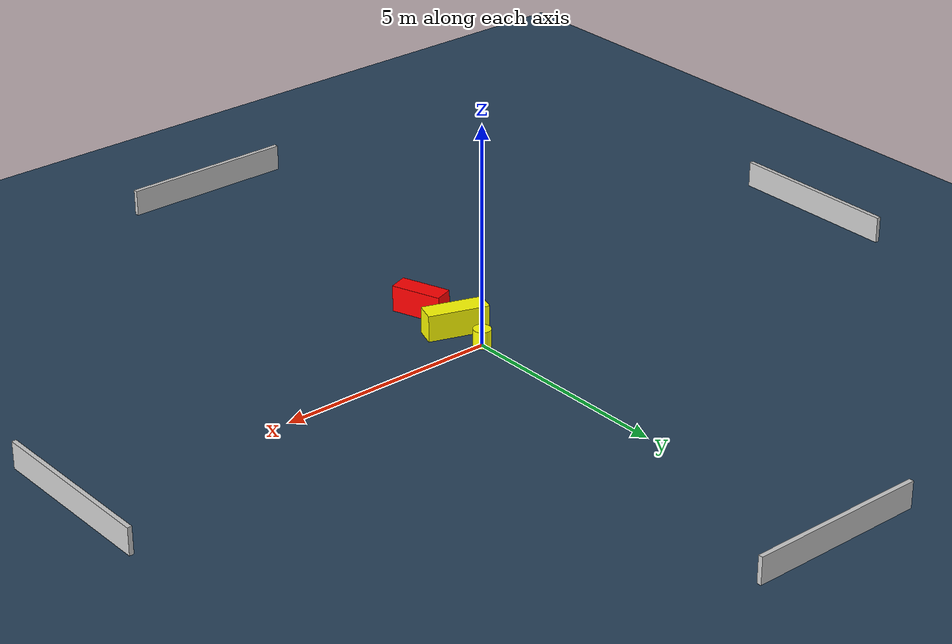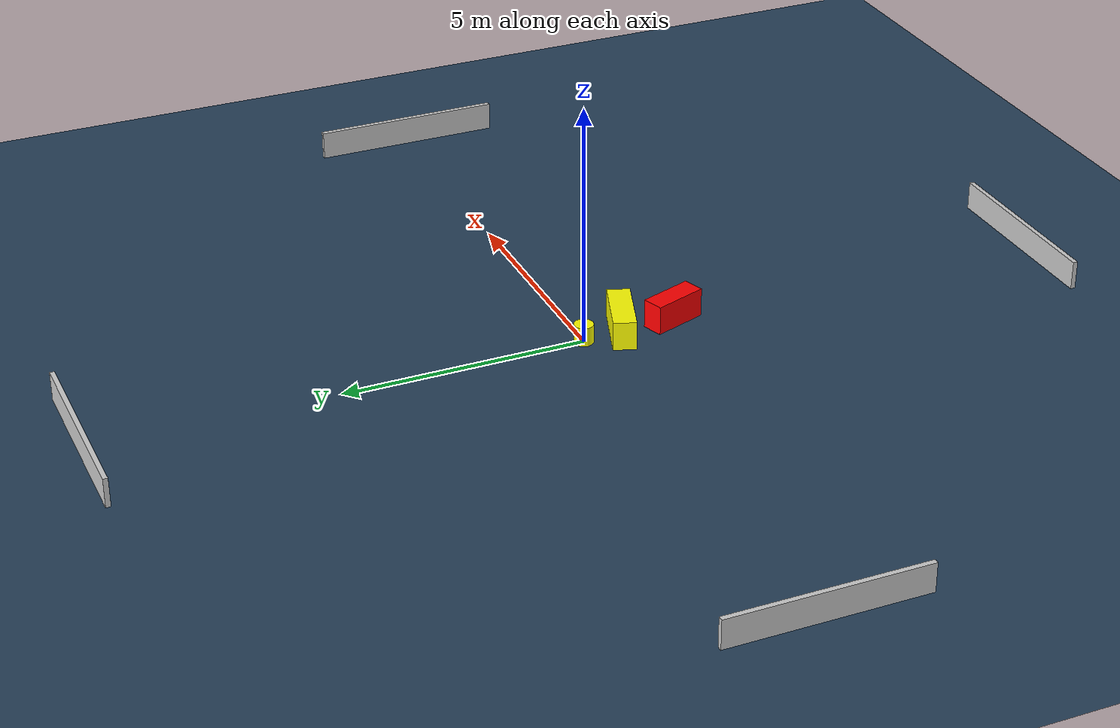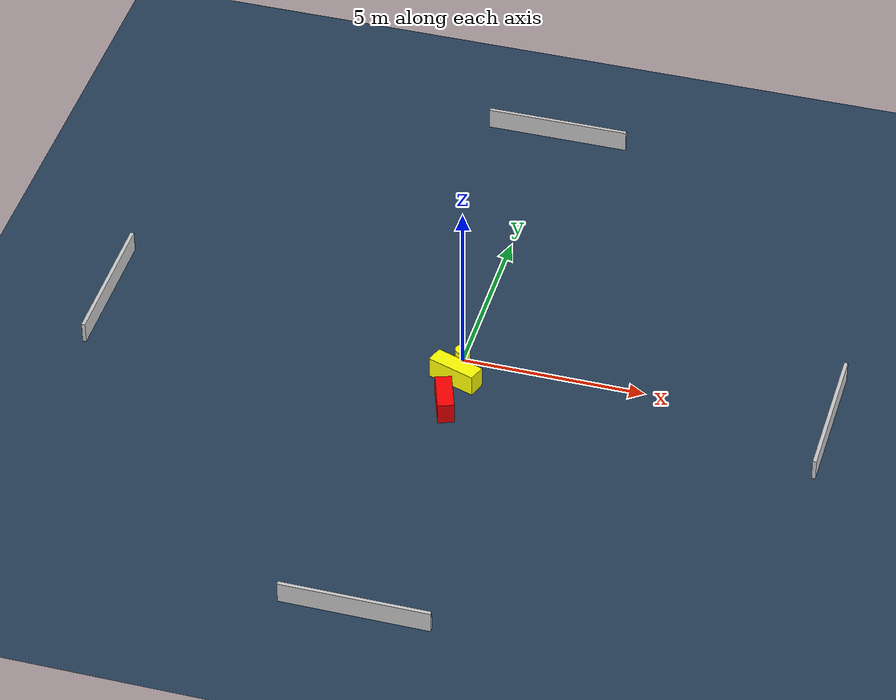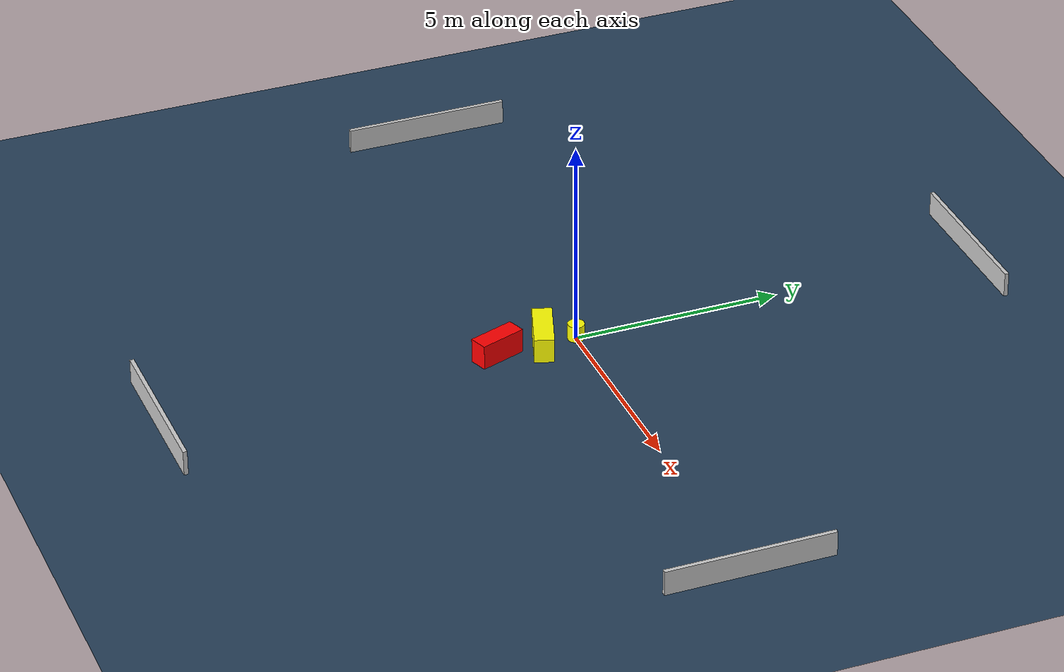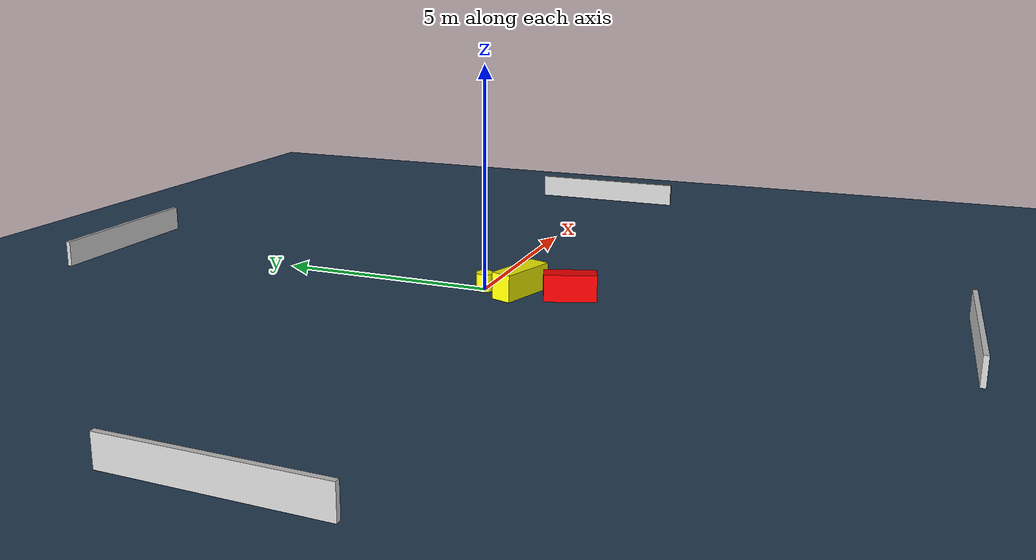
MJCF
<?xml version="1.0" ?>
<mujoco model="generated_environment">
  <option timestep="0.01" integrator="RK4" cone="elliptic"/>
  <default>
    <geom density="1"/>
  </default>
  <asset>
    <texture builtin="gradient" height="3072" name="skybox" rgb1="0.3 0.5 0.7" rgb2="0 0 0" type="skybox" width="512"/>
    <texture builtin="checker" height="300" name="groundplane" rgb1="0.2 0.3 0.4" rgb2="0.1 0.2 0.3" type="2d" width="300"/>
    <material name="groundplane" reflectance="0.2" texrepeat="5 5" texture="groundplane"/>
  </asset>
  <worldbody>
    <light dir="0 0 -1" directional="true" pos="0 0 1.5"/>
    <geom condim="3" friction="0.5 0.005 0.001" material="groundplane" name="floor" pos="0 0 0" size="0 0 0.05" type="plane"/>
    <body name="walls">
      <geom name="wall_1" condim="4" pos="-10.0 0.0 0.3" rgba="0.800000011920929 0.800000011920929 0.800000011920929 1.0" size="0.05 2.0 0.3" type="box"/>
      <geom name="wall_2" condim="4" pos="10.0 0.0 0.3" rgba="0.800000011920929 0.800000011920929 0.800000011920929 1.0" size="0.05 2.0 0.3" type="box"/>
      <geom name="wall_3" condim="4" pos="0.0 -10.0 0.3" rgba="0.800000011920929 0.800000011920929 0.800000011920929 1.0" size="2.0 0.05 0.3" type="box"/>
      <geom name="wall_4" condim="4" pos="0.0 10.0 0.3" rgba="0.800000011920929 0.800000011920929 0.800000011920929 1.0" size="2.0 0.05 0.3" type="box"/>
    </body>
    <body name="robot">
      <joint name="joint_x" type="slide" pos="0 0 0" axis="1 0 0"/>
      <joint name="joint_y" type="slide" pos="0 0 0" axis="0 1 0"/>
      <geom name="robot" type="cylinder" pos="0.0 0.0 0.2" size="0.2 0.2 0.0" mass="5.0" friction="1.0 0.005 0.0001" condim="4" rgba="1.0 1.0 0.0 1.0"/>
    </body>
    <body name="obstacle_1_movable">
      <geom name="obstacle_1_movable" condim="4" pos="0.03736500826088416 -0.8276314631312124 0.3" euler="0 0 251.18648501602482" friction="0.0 0.005 0.001" rgba="1.0 1.0 0.0 1.0" size="0.2348978923142826 0.6876928714305541 0.3" type="box" mass="0.1"/>
      <joint type="free"/>
    </body>
    <body name="obstacle_2_static">
      <geom name="obstacle_2_static" condim="4" pos="0.05569419662870629 -1.9562254576439562 0.3" euler="0 0 289.5027767144825" friction="0.0 0.005 0.001" rgba="1.0 0.0 0.0 1.0" size="0.5752205953514111 0.22232029697921643 0.3" type="box"/>
    </body>
  </worldbody>
  <actuator>
    <motor name="actuator_x" joint="joint_x" gear="1" ctrlrange="-1 1"/>
    <motor name="actuator_y" joint="joint_y" gear="1" ctrlrange="-1 1"/>
  </actuator>
</mujoco>
